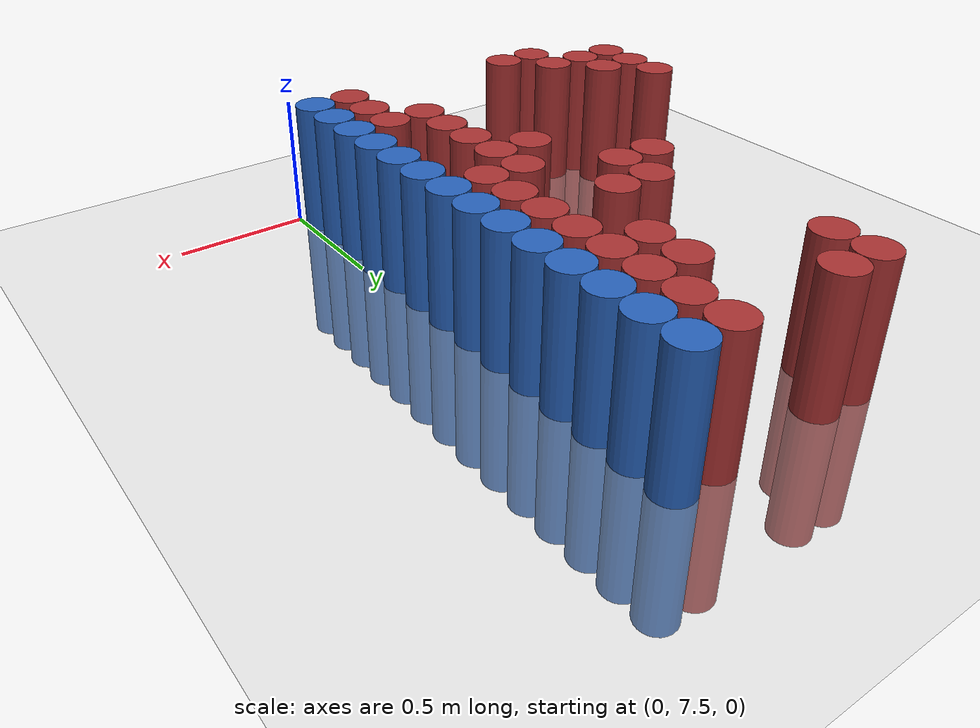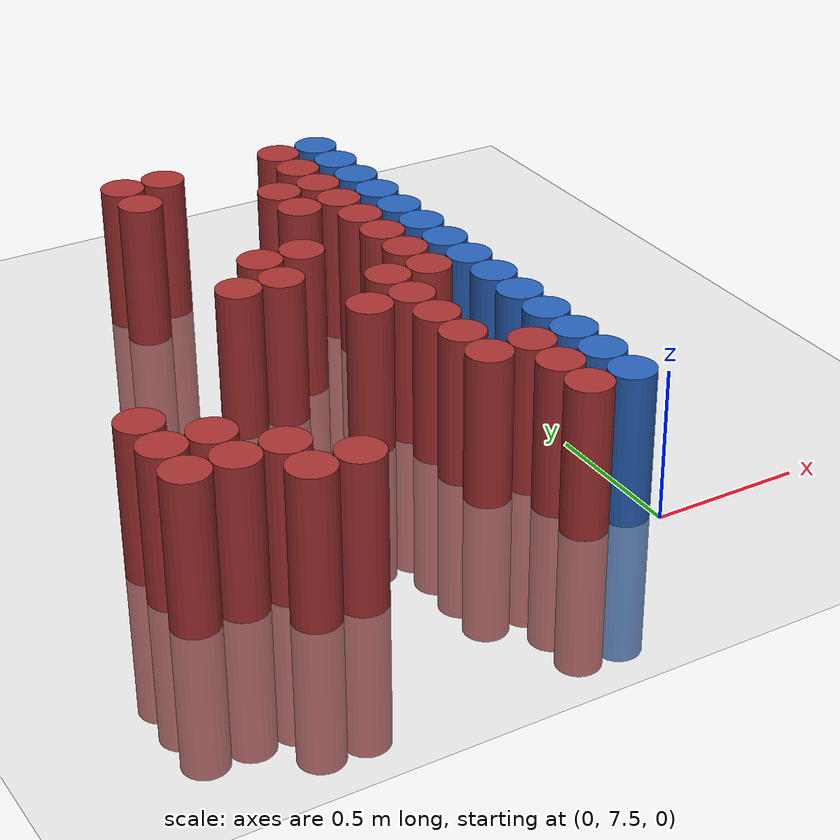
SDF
<sdf version="1.6">
 <world name="default">
  <model name="ground_plane">
   <static>1</static>
   <link name="link">
    <collision name="collision">
     <geometry><plane><normal>0 0 1</normal><size>100 100</size></plane></geometry>
     <surface><friction><ode><mu>100</mu><mu2>50</mu2></ode></friction></surface>
    </collision>
    <visual name="visual">
     <cast_shadows>0</cast_shadows>
     <geometry><plane><normal>0 0 1</normal><size>100 100</size></plane></geometry>
     <material>
      <script><uri>file://media/materials/scripts/gazebo.material</uri><name>Gazebo/Grey</name></script>
     </material>
    </visual>
   </link>
  </model>
  <model name="unit_cylinder_231">
   <static>1</static>
   <pose>-1.425000 7.725000 0.000000 0.000000 0.000000 0.000000</pose>
   <link name="link">
    <inertial>
     <mass>1</mass>
     <inertia><ixx>0.145833</ixx><ixy>0</ixy><ixz>0</ixz><iyy>0.145833</iyy><iyz>0</iyz><izz>0.125</izz></inertia>
    </inertial>
    <collision name="collision">
     <geometry><cylinder><radius>0.075000</radius><length>1</length></cylinder></geometry>
    </collision>
    <visual name="visual">
     <geometry><cylinder><radius>0.075000</radius><length>1</length></cylinder></geometry>
     <material>
      <ambient>0.648000 0.192000 0.192000 1</ambient>
      <diffuse>0.648000 0.192000 0.192000 1</diffuse>
     </material>
     <material>
      <script><name>Gazebo/Grey</name><uri>file://media/materials/scripts/gazebo.material</uri></script>
     </material>
    </visual>
   </link>
  </model>
  <model name="unit_cylinder_232">
   <static>1</static>
   <pose>-1.425000 7.875000 0.000000 0.000000 0.000000 0.000000</pose>
   <link name="link">
    <inertial>
     <mass>1</mass>
     <inertia><ixx>0.145833</ixx><ixy>0</ixy><ixz>0</ixz><iyy>0.145833</iyy><iyz>0</iyz><izz>0.125</izz></inertia>
    </inertial>
    <collision name="collision">
     <geometry><cylinder><radius>0.075000</radius><length>1</length></cylinder></geometry>
    </collision>
    <visual name="visual">
     <geometry><cylinder><radius>0.075000</radius><length>1</length></cylinder></geometry>
     <material>
      <ambient>0.648000 0.192000 0.192000 1</ambient>
      <diffuse>0.648000 0.192000 0.192000 1</diffuse>
     </material>
     <material>
      <script><name>Gazebo/Grey</name><uri>file://media/materials/scripts/gazebo.material</uri></script>
     </material>
    </visual>
   </link>
  </model>
  <model name="unit_cylinder_233">
   <static>1</static>
   <pose>-1.425000 8.025000 0.000000 0.000000 0.000000 0.000000</pose>
   <link name="link">
    <inertial>
     <mass>1</mass>
     <inertia><ixx>0.145833</ixx><ixy>0</ixy><ixz>0</ixz><iyy>0.145833</iyy><iyz>0</iyz><izz>0.125</izz></inertia>
    </inertial>
    <collision name="collision">
     <geometry><cylinder><radius>0.075000</radius><length>1</length></cylinder></geometry>
    </collision>
    <visual name="visual">
     <geometry><cylinder><radius>0.075000</radius><length>1</length></cylinder></geometry>
     <material>
      <ambient>0.648000 0.192000 0.192000 1</ambient>
      <diffuse>0.648000 0.192000 0.192000 1</diffuse>
     </material>
     <material>
      <script><name>Gazebo/Grey</name><uri>file://media/materials/scripts/gazebo.material</uri></script>
     </material>
    </visual>
   </link>
  </model>
  <model name="unit_cylinder_240">
   <static>1</static>
   <pose>-1.275000 7.725000 0.000000 0.000000 0.000000 0.000000</pose>
   <link name="link">
    <inertial>
     <mass>1</mass>
     <inertia><ixx>0.145833</ixx><ixy>0</ixy><ixz>0</ixz><iyy>0.145833</iyy><iyz>0</iyz><izz>0.125</izz></inertia>
    </inertial>
    <collision name="collision">
     <geometry><cylinder><radius>0.075000</radius><length>1</length></cylinder></geometry>
    </collision>
    <visual name="visual">
     <geometry><cylinder><radius>0.075000</radius><length>1</length></cylinder></geometry>
     <material>
      <ambient>0.648000 0.192000 0.192000 1</ambient>
      <diffuse>0.648000 0.192000 0.192000 1</diffuse>
     </material>
     <material>
      <script><name>Gazebo/Grey</name><uri>file://media/materials/scripts/gazebo.material</uri></script>
     </material>
    </visual>
   </link>
  </model>
  <model name="unit_cylinder_241">
   <static>1</static>
   <pose>-1.275000 7.875000 0.000000 0.000000 0.000000 0.000000</pose>
   <link name="link">
    <inertial>
     <mass>1</mass>
     <inertia><ixx>0.145833</ixx><ixy>0</ixy><ixz>0</ixz><iyy>0.145833</iyy><iyz>0</iyz><izz>0.125</izz></inertia>
    </inertial>
    <collision name="collision">
     <geometry><cylinder><radius>0.075000</radius><length>1</length></cylinder></geometry>
    </collision>
    <visual name="visual">
     <geometry><cylinder><radius>0.075000</radius><length>1</length></cylinder></geometry>
     <material>
      <ambient>0.648000 0.192000 0.192000 1</ambient>
      <diffuse>0.648000 0.192000 0.192000 1</diffuse>
     </material>
     <material>
      <script><name>Gazebo/Grey</name><uri>file://media/materials/scripts/gazebo.material</uri></script>
     </material>
    </visual>
   </link>
  </model>
  <model name="unit_cylinder_248">
   <static>1</static>
   <pose>-1.125000 7.575000 0.000000 0.000000 0.000000 0.000000</pose>
   <link name="link">
    <inertial>
     <mass>1</mass>
     <inertia><ixx>0.145833</ixx><ixy>0</ixy><ixz>0</ixz><iyy>0.145833</iyy><iyz>0</iyz><izz>0.125</izz></inertia>
    </inertial>
    <collision name="collision">
     <geometry><cylinder><radius>0.075000</radius><length>1</length></cylinder></geometry>
    </collision>
    <visual name="visual">
     <geometry><cylinder><radius>0.075000</radius><length>1</length></cylinder></geometry>
     <material>
      <ambient>0.648000 0.192000 0.192000 1</ambient>
      <diffuse>0.648000 0.192000 0.192000 1</diffuse>
     </material>
     <material>
      <script><name>Gazebo/Grey</name><uri>file://media/materials/scripts/gazebo.material</uri></script>
     </material>
    </visual>
   </link>
  </model>
  <model name="unit_cylinder_249">
   <static>1</static>
   <pose>-1.125000 7.725000 0.000000 0.000000 0.000000 0.000000</pose>
   <link name="link">
    <inertial>
     <mass>1</mass>
     <inertia><ixx>0.145833</ixx><ixy>0</ixy><ixz>0</ixz><iyy>0.145833</iyy><iyz>0</iyz><izz>0.125</izz></inertia>
    </inertial>
    <collision name="collision">
     <geometry><cylinder><radius>0.075000</radius><length>1</length></cylinder></geometry>
    </collision>
    <visual name="visual">
     <geometry><cylinder><radius>0.075000</radius><length>1</length></cylinder></geometry>
     <material>
      <ambient>0.648000 0.192000 0.192000 1</ambient>
      <diffuse>0.648000 0.192000 0.192000 1</diffuse>
     </material>
     <material>
      <script><name>Gazebo/Grey</name><uri>file://media/materials/scripts/gazebo.material</uri></script>
     </material>
    </visual>
   </link>
  </model>
  <model name="unit_cylinder_254">
   <static>1</static>
   <pose>-0.975000 7.575000 0.000000 0.000000 0.000000 0.000000</pose>
   <link name="link">
    <inertial>
     <mass>1</mass>
     <inertia><ixx>0.145833</ixx><ixy>0</ixy><ixz>0</ixz><iyy>0.145833</iyy><iyz>0</iyz><izz>0.125</izz></inertia>
    </inertial>
    <collision name="collision">
     <geometry><cylinder><radius>0.075000</radius><length>1</length></cylinder></geometry>
    </collision>
    <visual name="visual">
     <geometry><cylinder><radius>0.075000</radius><length>1</length></cylinder></geometry>
     <material>
      <ambient>0.648000 0.192000 0.192000 1</ambient>
      <diffuse>0.648000 0.192000 0.192000 1</diffuse>
     </material>
     <material>
      <script><name>Gazebo/Grey</name><uri>file://media/materials/scripts/gazebo.material</uri></script>
     </material>
    </visual>
   </link>
  </model>
  <model name="unit_cylinder_257">
   <static>1</static>
   <pose>-0.825000 8.625000 0.000000 0.000000 0.000000 0.000000</pose>
   <link name="link">
    <inertial>
     <mass>1</mass>
     <inertia><ixx>0.145833</ixx><ixy>0</ixy><ixz>0</ixz><iyy>0.145833</iyy><iyz>0</iyz><izz>0.125</izz></inertia>
    </inertial>
    <collision name="collision">
     <geometry><cylinder><radius>0.075000</radius><length>1</length></cylinder></geometry>
    </collision>
    <visual name="visual">
     <geometry><cylinder><radius>0.075000</radius><length>1</length></cylinder></geometry>
     <material>
      <ambient>0.648000 0.192000 0.192000 1</ambient>
      <diffuse>0.648000 0.192000 0.192000 1</diffuse>
     </material>
     <material>
      <script><name>Gazebo/Grey</name><uri>file://media/materials/scripts/gazebo.material</uri></script>
     </material>
    </visual>
   </link>
  </model>
  <model name="unit_cylinder_258">
   <static>1</static>
   <pose>-0.825000 9.375000 0.000000 0.000000 0.000000 0.000000</pose>
   <link name="link">
    <inertial>
     <mass>1</mass>
     <inertia><ixx>0.145833</ixx><ixy>0</ixy><ixz>0</ixz><iyy>0.145833</iyy><iyz>0</iyz><izz>0.125</izz></inertia>
    </inertial>
    <collision name="collision">
     <geometry><cylinder><radius>0.075000</radius><length>1</length></cylinder></geometry>
    </collision>
    <visual name="visual">
     <geometry><cylinder><radius>0.075000</radius><length>1</length></cylinder></geometry>
     <material>
      <ambient>0.648000 0.192000 0.192000 1</ambient>
      <diffuse>0.648000 0.192000 0.192000 1</diffuse>
     </material>
     <material>
      <script><name>Gazebo/Grey</name><uri>file://media/materials/scripts/gazebo.material</uri></script>
     </material>
    </visual>
   </link>
  </model>
  <model name="unit_cylinder_259">
   <static>1</static>
   <pose>-0.825000 9.525000 0.000000 0.000000 0.000000 0.000000</pose>
   <link name="link">
    <inertial>
     <mass>1</mass>
     <inertia><ixx>0.145833</ixx><ixy>0</ixy><ixz>0</ixz><iyy>0.145833</iyy><iyz>0</iyz><izz>0.125</izz></inertia>
    </inertial>
    <collision name="collision">
     <geometry><cylinder><radius>0.075000</radius><length>1</length></cylinder></geometry>
    </collision>
    <visual name="visual">
     <geometry><cylinder><radius>0.075000</radius><length>1</length></cylinder></geometry>
     <material>
      <ambient>0.648000 0.192000 0.192000 1</ambient>
      <diffuse>0.648000 0.192000 0.192000 1</diffuse>
     </material>
     <material>
      <script><name>Gazebo/Grey</name><uri>file://media/materials/scripts/gazebo.material</uri></script>
     </material>
    </visual>
   </link>
  </model>
  <model name="unit_cylinder_264">
   <static>1</static>
   <pose>-0.675000 8.625000 0.000000 0.000000 0.000000 0.000000</pose>
   <link name="link">
    <inertial>
     <mass>1</mass>
     <inertia><ixx>0.145833</ixx><ixy>0</ixy><ixz>0</ixz><iyy>0.145833</iyy><iyz>0</iyz><izz>0.125</izz></inertia>
    </inertial>
    <collision name="collision">
     <geometry><cylinder><radius>0.075000</radius><length>1</length></cylinder></geometry>
    </collision>
    <visual name="visual">
     <geometry><cylinder><radius>0.075000</radius><length>1</length></cylinder></geometry>
     <material>
      <ambient>0.648000 0.192000 0.192000 1</ambient>
      <diffuse>0.648000 0.192000 0.192000 1</diffuse>
     </material>
     <material>
      <script><name>Gazebo/Grey</name><uri>file://media/materials/scripts/gazebo.material</uri></script>
     </material>
    </visual>
   </link>
  </model>
  <model name="unit_cylinder_265">
   <static>1</static>
   <pose>-0.675000 8.775000 0.000000 0.000000 0.000000 0.000000</pose>
   <link name="link">
    <inertial>
     <mass>1</mass>
     <inertia><ixx>0.145833</ixx><ixy>0</ixy><ixz>0</ixz><iyy>0.145833</iyy><iyz>0</iyz><izz>0.125</izz></inertia>
    </inertial>
    <collision name="collision">
     <geometry><cylinder><radius>0.075000</radius><length>1</length></cylinder></geometry>
    </collision>
    <visual name="visual">
     <geometry><cylinder><radius>0.075000</radius><length>1</length></cylinder></geometry>
     <material>
      <ambient>0.648000 0.192000 0.192000 1</ambient>
      <diffuse>0.648000 0.192000 0.192000 1</diffuse>
     </material>
     <material>
      <script><name>Gazebo/Grey</name><uri>file://media/materials/scripts/gazebo.material</uri></script>
     </material>
    </visual>
   </link>
  </model>
  <model name="unit_cylinder_266">
   <static>1</static>
   <pose>-0.675000 9.525000 0.000000 0.000000 0.000000 0.000000</pose>
   <link name="link">
    <inertial>
     <mass>1</mass>
     <inertia><ixx>0.145833</ixx><ixy>0</ixy><ixz>0</ixz><iyy>0.145833</iyy><iyz>0</iyz><izz>0.125</izz></inertia>
    </inertial>
    <collision name="collision">
     <geometry><cylinder><radius>0.075000</radius><length>1</length></cylinder></geometry>
    </collision>
    <visual name="visual">
     <geometry><cylinder><radius>0.075000</radius><length>1</length></cylinder></geometry>
     <material>
      <ambient>0.648000 0.192000 0.192000 1</ambient>
      <diffuse>0.648000 0.192000 0.192000 1</diffuse>
     </material>
     <material>
      <script><name>Gazebo/Grey</name><uri>file://media/materials/scripts/gazebo.material</uri></script>
     </material>
    </visual>
   </link>
  </model>
  <model name="unit_cylinder_276">
   <static>1</static>
   <pose>-0.525000 8.325000 0.000000 0.000000 0.000000 0.000000</pose>
   <link name="link">
    <inertial>
     <mass>1</mass>
     <inertia><ixx>0.145833</ixx><ixy>0</ixy><ixz>0</ixz><iyy>0.145833</iyy><iyz>0</iyz><izz>0.125</izz></inertia>
    </inertial>
    <collision name="collision">
     <geometry><cylinder><radius>0.075000</radius><length>1</length></cylinder></geometry>
    </collision>
    <visual name="visual">
     <geometry><cylinder><radius>0.075000</radius><length>1</length></cylinder></geometry>
     <material>
      <ambient>0.648000 0.192000 0.192000 1</ambient>
      <diffuse>0.648000 0.192000 0.192000 1</diffuse>
     </material>
     <material>
      <script><name>Gazebo/Grey</name><uri>file://media/materials/scripts/gazebo.material</uri></script>
     </material>
    </visual>
   </link>
  </model>
  <model name="unit_cylinder_277">
   <static>1</static>
   <pose>-0.525000 8.775000 0.000000 0.000000 0.000000 0.000000</pose>
   <link name="link">
    <inertial>
     <mass>1</mass>
     <inertia><ixx>0.145833</ixx><ixy>0</ixy><ixz>0</ixz><iyy>0.145833</iyy><iyz>0</iyz><izz>0.125</izz></inertia>
    </inertial>
    <collision name="collision">
     <geometry><cylinder><radius>0.075000</radius><length>1</length></cylinder></geometry>
    </collision>
    <visual name="visual">
     <geometry><cylinder><radius>0.075000</radius><length>1</length></cylinder></geometry>
     <material>
      <ambient>0.648000 0.192000 0.192000 1</ambient>
      <diffuse>0.648000 0.192000 0.192000 1</diffuse>
     </material>
     <material>
      <script><name>Gazebo/Grey</name><uri>file://media/materials/scripts/gazebo.material</uri></script>
     </material>
    </visual>
   </link>
  </model>
  <model name="unit_cylinder_284">
   <static>1</static>
   <pose>-0.375000 7.875000 0.000000 0.000000 0.000000 0.000000</pose>
   <link name="link">
    <inertial>
     <mass>1</mass>
     <inertia><ixx>0.145833</ixx><ixy>0</ixy><ixz>0</ixz><iyy>0.145833</iyy><iyz>0</iyz><izz>0.125</izz></inertia>
    </inertial>
    <collision name="collision">
     <geometry><cylinder><radius>0.075000</radius><length>1</length></cylinder></geometry>
    </collision>
    <visual name="visual">
     <geometry><cylinder><radius>0.075000</radius><length>1</length></cylinder></geometry>
     <material>
      <ambient>0.648000 0.192000 0.192000 1</ambient>
      <diffuse>0.648000 0.192000 0.192000 1</diffuse>
     </material>
     <material>
      <script><name>Gazebo/Grey</name><uri>file://media/materials/scripts/gazebo.material</uri></script>
     </material>
    </visual>
   </link>
  </model>
  <model name="unit_cylinder_285">
   <static>1</static>
   <pose>-0.375000 8.025000 0.000000 0.000000 0.000000 0.000000</pose>
   <link name="link">
    <inertial>
     <mass>1</mass>
     <inertia><ixx>0.145833</ixx><ixy>0</ixy><ixz>0</ixz><iyy>0.145833</iyy><iyz>0</iyz><izz>0.125</izz></inertia>
    </inertial>
    <collision name="collision">
     <geometry><cylinder><radius>0.075000</radius><length>1</length></cylinder></geometry>
    </collision>
    <visual name="visual">
     <geometry><cylinder><radius>0.075000</radius><length>1</length></cylinder></geometry>
     <material>
      <ambient>0.648000 0.192000 0.192000 1</ambient>
      <diffuse>0.648000 0.192000 0.192000 1</diffuse>
     </material>
     <material>
      <script><name>Gazebo/Grey</name><uri>file://media/materials/scripts/gazebo.material</uri></script>
     </material>
    </visual>
   </link>
  </model>
  <model name="unit_cylinder_286">
   <static>1</static>
   <pose>-0.375000 8.175000 0.000000 0.000000 0.000000 0.000000</pose>
   <link name="link">
    <inertial>
     <mass>1</mass>
     <inertia><ixx>0.145833</ixx><ixy>0</ixy><ixz>0</ixz><iyy>0.145833</iyy><iyz>0</iyz><izz>0.125</izz></inertia>
    </inertial>
    <collision name="collision">
     <geometry><cylinder><radius>0.075000</radius><length>1</length></cylinder></geometry>
    </collision>
    <visual name="visual">
     <geometry><cylinder><radius>0.075000</radius><length>1</length></cylinder></geometry>
     <material>
      <ambient>0.648000 0.192000 0.192000 1</ambient>
      <diffuse>0.648000 0.192000 0.192000 1</diffuse>
     </material>
     <material>
      <script><name>Gazebo/Grey</name><uri>file://media/materials/scripts/gazebo.material</uri></script>
     </material>
    </visual>
   </link>
  </model>
  <model name="unit_cylinder_287">
   <static>1</static>
   <pose>-0.375000 8.325000 0.000000 0.000000 0.000000 0.000000</pose>
   <link name="link">
    <inertial>
     <mass>1</mass>
     <inertia><ixx>0.145833</ixx><ixy>0</ixy><ixz>0</ixz><iyy>0.145833</iyy><iyz>0</iyz><izz>0.125</izz></inertia>
    </inertial>
    <collision name="collision">
     <geometry><cylinder><radius>0.075000</radius><length>1</length></cylinder></geometry>
    </collision>
    <visual name="visual">
     <geometry><cylinder><radius>0.075000</radius><length>1</length></cylinder></geometry>
     <material>
      <ambient>0.648000 0.192000 0.192000 1</ambient>
      <diffuse>0.648000 0.192000 0.192000 1</diffuse>
     </material>
     <material>
      <script><name>Gazebo/Grey</name><uri>file://media/materials/scripts/gazebo.material</uri></script>
     </material>
    </visual>
   </link>
  </model>
  <model name="unit_cylinder_288">
   <static>1</static>
   <pose>-0.375000 8.475000 0.000000 0.000000 0.000000 0.000000</pose>
   <link name="link">
    <inertial>
     <mass>1</mass>
     <inertia><ixx>0.145833</ixx><ixy>0</ixy><ixz>0</ixz><iyy>0.145833</iyy><iyz>0</iyz><izz>0.125</izz></inertia>
    </inertial>
    <collision name="collision">
     <geometry><cylinder><radius>0.075000</radius><length>1</length></cylinder></geometry>
    </collision>
    <visual name="visual">
     <geometry><cylinder><radius>0.075000</radius><length>1</length></cylinder></geometry>
     <material>
      <ambient>0.648000 0.192000 0.192000 1</ambient>
      <diffuse>0.648000 0.192000 0.192000 1</diffuse>
     </material>
     <material>
      <script><name>Gazebo/Grey</name><uri>file://media/materials/scripts/gazebo.material</uri></script>
     </material>
    </visual>
   </link>
  </model>
  <model name="unit_cylinder_289">
   <static>1</static>
   <pose>-0.375000 9.075000 0.000000 0.000000 0.000000 0.000000</pose>
   <link name="link">
    <inertial>
     <mass>1</mass>
     <inertia><ixx>0.145833</ixx><ixy>0</ixy><ixz>0</ixz><iyy>0.145833</iyy><iyz>0</iyz><izz>0.125</izz></inertia>
    </inertial>
    <collision name="collision">
     <geometry><cylinder><radius>0.075000</radius><length>1</length></cylinder></geometry>
    </collision>
    <visual name="visual">
     <geometry><cylinder><radius>0.075000</radius><length>1</length></cylinder></geometry>
     <material>
      <ambient>0.648000 0.192000 0.192000 1</ambient>
      <diffuse>0.648000 0.192000 0.192000 1</diffuse>
     </material>
     <material>
      <script><name>Gazebo/Grey</name><uri>file://media/materials/scripts/gazebo.material</uri></script>
     </material>
    </visual>
   </link>
  </model>
  <model name="unit_cylinder_290">
   <static>1</static>
   <pose>-0.375000 9.225000 0.000000 0.000000 0.000000 0.000000</pose>
   <link name="link">
    <inertial>
     <mass>1</mass>
     <inertia><ixx>0.145833</ixx><ixy>0</ixy><ixz>0</ixz><iyy>0.145833</iyy><iyz>0</iyz><izz>0.125</izz></inertia>
    </inertial>
    <collision name="collision">
     <geometry><cylinder><radius>0.075000</radius><length>1</length></cylinder></geometry>
    </collision>
    <visual name="visual">
     <geometry><cylinder><radius>0.075000</radius><length>1</length></cylinder></geometry>
     <material>
      <ambient>0.648000 0.192000 0.192000 1</ambient>
      <diffuse>0.648000 0.192000 0.192000 1</diffuse>
     </material>
     <material>
      <script><name>Gazebo/Grey</name><uri>file://media/materials/scripts/gazebo.material</uri></script>
     </material>
    </visual>
   </link>
  </model>
  <model name="unit_cylinder_296">
   <static>1</static>
   <pose>-0.225000 7.575000 0.000000 0.000000 0.000000 0.000000</pose>
   <link name="link">
    <inertial>
     <mass>1</mass>
     <inertia><ixx>0.145833</ixx><ixy>0</ixy><ixz>0</ixz><iyy>0.145833</iyy><iyz>0</iyz><izz>0.125</izz></inertia>
    </inertial>
    <collision name="collision">
     <geometry><cylinder><radius>0.075000</radius><length>1</length></cylinder></geometry>
    </collision>
    <visual name="visual">
     <geometry><cylinder><radius>0.075000</radius><length>1</length></cylinder></geometry>
     <material>
      <ambient>0.648000 0.192000 0.192000 1</ambient>
      <diffuse>0.648000 0.192000 0.192000 1</diffuse>
     </material>
     <material>
      <script><name>Gazebo/Grey</name><uri>file://media/materials/scripts/gazebo.material</uri></script>
     </material>
    </visual>
   </link>
  </model>
  <model name="unit_cylinder_297">
   <static>1</static>
   <pose>-0.225000 7.725000 0.000000 0.000000 0.000000 0.000000</pose>
   <link name="link">
    <inertial>
     <mass>1</mass>
     <inertia><ixx>0.145833</ixx><ixy>0</ixy><ixz>0</ixz><iyy>0.145833</iyy><iyz>0</iyz><izz>0.125</izz></inertia>
    </inertial>
    <collision name="collision">
     <geometry><cylinder><radius>0.075000</radius><length>1</length></cylinder></geometry>
    </collision>
    <visual name="visual">
     <geometry><cylinder><radius>0.075000</radius><length>1</length></cylinder></geometry>
     <material>
      <ambient>0.648000 0.192000 0.192000 1</ambient>
      <diffuse>0.648000 0.192000 0.192000 1</diffuse>
     </material>
     <material>
      <script><name>Gazebo/Grey</name><uri>file://media/materials/scripts/gazebo.material</uri></script>
     </material>
    </visual>
   </link>
  </model>
  <model name="unit_cylinder_298">
   <static>1</static>
   <pose>-0.225000 7.875000 0.000000 0.000000 0.000000 0.000000</pose>
   <link name="link">
    <inertial>
     <mass>1</mass>
     <inertia><ixx>0.145833</ixx><ixy>0</ixy><ixz>0</ixz><iyy>0.145833</iyy><iyz>0</iyz><izz>0.125</izz></inertia>
    </inertial>
    <collision name="collision">
     <geometry><cylinder><radius>0.075000</radius><length>1</length></cylinder></geometry>
    </collision>
    <visual name="visual">
     <geometry><cylinder><radius>0.075000</radius><length>1</length></cylinder></geometry>
     <material>
      <ambient>0.648000 0.192000 0.192000 1</ambient>
      <diffuse>0.648000 0.192000 0.192000 1</diffuse>
     </material>
     <material>
      <script><name>Gazebo/Grey</name><uri>file://media/materials/scripts/gazebo.material</uri></script>
     </material>
    </visual>
   </link>
  </model>
  <model name="unit_cylinder_299">
   <static>1</static>
   <pose>-0.225000 8.475000 0.000000 0.000000 0.000000 0.000000</pose>
   <link name="link">
    <inertial>
     <mass>1</mass>
     <inertia><ixx>0.145833</ixx><ixy>0</ixy><ixz>0</ixz><iyy>0.145833</iyy><iyz>0</iyz><izz>0.125</izz></inertia>
    </inertial>
    <collision name="collision">
     <geometry><cylinder><radius>0.075000</radius><length>1</length></cylinder></geometry>
    </collision>
    <visual name="visual">
     <geometry><cylinder><radius>0.075000</radius><length>1</length></cylinder></geometry>
     <material>
      <ambient>0.648000 0.192000 0.192000 1</ambient>
      <diffuse>0.648000 0.192000 0.192000 1</diffuse>
     </material>
     <material>
      <script><name>Gazebo/Grey</name><uri>file://media/materials/scripts/gazebo.material</uri></script>
     </material>
    </visual>
   </link>
  </model>
  <model name="unit_cylinder_300">
   <static>1</static>
   <pose>-0.225000 8.625000 0.000000 0.000000 0.000000 0.000000</pose>
   <link name="link">
    <inertial>
     <mass>1</mass>
     <inertia><ixx>0.145833</ixx><ixy>0</ixy><ixz>0</ixz><iyy>0.145833</iyy><iyz>0</iyz><izz>0.125</izz></inertia>
    </inertial>
    <collision name="collision">
     <geometry><cylinder><radius>0.075000</radius><length>1</length></cylinder></geometry>
    </collision>
    <visual name="visual">
     <geometry><cylinder><radius>0.075000</radius><length>1</length></cylinder></geometry>
     <material>
      <ambient>0.648000 0.192000 0.192000 1</ambient>
      <diffuse>0.648000 0.192000 0.192000 1</diffuse>
     </material>
     <material>
      <script><name>Gazebo/Grey</name><uri>file://media/materials/scripts/gazebo.material</uri></script>
     </material>
    </visual>
   </link>
  </model>
  <model name="unit_cylinder_301">
   <static>1</static>
   <pose>-0.225000 8.775000 0.000000 0.000000 0.000000 0.000000</pose>
   <link name="link">
    <inertial>
     <mass>1</mass>
     <inertia><ixx>0.145833</ixx><ixy>0</ixy><ixz>0</ixz><iyy>0.145833</iyy><iyz>0</iyz><izz>0.125</izz></inertia>
    </inertial>
    <collision name="collision">
     <geometry><cylinder><radius>0.075000</radius><length>1</length></cylinder></geometry>
    </collision>
    <visual name="visual">
     <geometry><cylinder><radius>0.075000</radius><length>1</length></cylinder></geometry>
     <material>
      <ambient>0.648000 0.192000 0.192000 1</ambient>
      <diffuse>0.648000 0.192000 0.192000 1</diffuse>
     </material>
     <material>
      <script><name>Gazebo/Grey</name><uri>file://media/materials/scripts/gazebo.material</uri></script>
     </material>
    </visual>
   </link>
  </model>
  <model name="unit_cylinder_302">
   <static>1</static>
   <pose>-0.225000 8.925000 0.000000 0.000000 0.000000 0.000000</pose>
   <link name="link">
    <inertial>
     <mass>1</mass>
     <inertia><ixx>0.145833</ixx><ixy>0</ixy><ixz>0</ixz><iyy>0.145833</iyy><iyz>0</iyz><izz>0.125</izz></inertia>
    </inertial>
    <collision name="collision">
     <geometry><cylinder><radius>0.075000</radius><length>1</length></cylinder></geometry>
    </collision>
    <visual name="visual">
     <geometry><cylinder><radius>0.075000</radius><length>1</length></cylinder></geometry>
     <material>
      <ambient>0.648000 0.192000 0.192000 1</ambient>
      <diffuse>0.648000 0.192000 0.192000 1</diffuse>
     </material>
     <material>
      <script><name>Gazebo/Grey</name><uri>file://media/materials/scripts/gazebo.material</uri></script>
     </material>
    </visual>
   </link>
  </model>
  <model name="unit_cylinder_303">
   <static>1</static>
   <pose>-0.225000 9.075000 0.000000 0.000000 0.000000 0.000000</pose>
   <link name="link">
    <inertial>
     <mass>1</mass>
     <inertia><ixx>0.145833</ixx><ixy>0</ixy><ixz>0</ixz><iyy>0.145833</iyy><iyz>0</iyz><izz>0.125</izz></inertia>
    </inertial>
    <collision name="collision">
     <geometry><cylinder><radius>0.075000</radius><length>1</length></cylinder></geometry>
    </collision>
    <visual name="visual">
     <geometry><cylinder><radius>0.075000</radius><length>1</length></cylinder></geometry>
     <material>
      <ambient>0.648000 0.192000 0.192000 1</ambient>
      <diffuse>0.648000 0.192000 0.192000 1</diffuse>
     </material>
     <material>
      <script><name>Gazebo/Grey</name><uri>file://media/materials/scripts/gazebo.material</uri></script>
     </material>
    </visual>
   </link>
  </model>
  <model name="unit_cylinder_304">
   <static>1</static>
   <pose>-0.225000 9.225000 0.000000 0.000000 0.000000 0.000000</pose>
   <link name="link">
    <inertial>
     <mass>1</mass>
     <inertia><ixx>0.145833</ixx><ixy>0</ixy><ixz>0</ixz><iyy>0.145833</iyy><iyz>0</iyz><izz>0.125</izz></inertia>
    </inertial>
    <collision name="collision">
     <geometry><cylinder><radius>0.075000</radius><length>1</length></cylinder></geometry>
    </collision>
    <visual name="visual">
     <geometry><cylinder><radius>0.075000</radius><length>1</length></cylinder></geometry>
     <material>
      <ambient>0.648000 0.192000 0.192000 1</ambient>
      <diffuse>0.648000 0.192000 0.192000 1</diffuse>
     </material>
     <material>
      <script><name>Gazebo/Grey</name><uri>file://media/materials/scripts/gazebo.material</uri></script>
     </material>
    </visual>
   </link>
  </model>
  <model name="unit_cylinder_305">
   <static>1</static>
   <pose>-0.225000 9.375000 0.000000 0.000000 0.000000 0.000000</pose>
   <link name="link">
    <inertial>
     <mass>1</mass>
     <inertia><ixx>0.145833</ixx><ixy>0</ixy><ixz>0</ixz><iyy>0.145833</iyy><iyz>0</iyz><izz>0.125</izz></inertia>
    </inertial>
    <collision name="collision">
     <geometry><cylinder><radius>0.075000</radius><length>1</length></cylinder></geometry>
    </collision>
    <visual name="visual">
     <geometry><cylinder><radius>0.075000</radius><length>1</length></cylinder></geometry>
     <material>
      <ambient>0.648000 0.192000 0.192000 1</ambient>
      <diffuse>0.648000 0.192000 0.192000 1</diffuse>
     </material>
     <material>
      <script><name>Gazebo/Grey</name><uri>file://media/materials/scripts/gazebo.material</uri></script>
     </material>
    </visual>
   </link>
  </model>
  <model name="unit_cylinder_306">
   <static>1</static>
   <pose>-0.225000 9.525000 0.000000 0.000000 0.000000 0.000000</pose>
   <link name="link">
    <inertial>
     <mass>1</mass>
     <inertia><ixx>0.145833</ixx><ixy>0</ixy><ixz>0</ixz><iyy>0.145833</iyy><iyz>0</iyz><izz>0.125</izz></inertia>
    </inertial>
    <collision name="collision">
     <geometry><cylinder><radius>0.075000</radius><length>1</length></cylinder></geometry>
    </collision>
    <visual name="visual">
     <geometry><cylinder><radius>0.075000</radius><length>1</length></cylinder></geometry>
     <material>
      <ambient>0.648000 0.192000 0.192000 1</ambient>
      <diffuse>0.648000 0.192000 0.192000 1</diffuse>
     </material>
     <material>
      <script><name>Gazebo/Grey</name><uri>file://media/materials/scripts/gazebo.material</uri></script>
     </material>
    </visual>
   </link>
  </model>
  <model name="unit_cylinder_323">
   <static>1</static>
   <pose>-0.075000 7.575000 0.000000 0.000000 0.000000 0.000000</pose>
   <link name="link">
    <inertial>
     <mass>1</mass>
     <inertia><ixx>0.145833</ixx><ixy>0</ixy><ixz>0</ixz><iyy>0.145833</iyy><iyz>0</iyz><izz>0.125</izz></inertia>
    </inertial>
    <collision name="collision">
     <geometry><cylinder><radius>0.075000</radius><length>1</length></cylinder></geometry>
    </collision>
    <visual name="visual">
     <geometry><cylinder><radius>0.075000</radius><length>1</length></cylinder></geometry>
     <material>
      <ambient>0.152000 0.379000 0.720000 1</ambient>
      <diffuse>0.152000 0.379000 0.720000 1</diffuse>
     </material>
     <material>
      <script><name>Gazebo/Grey</name><uri>file://media/materials/scripts/gazebo.material</uri></script>
     </material>
    </visual>
   </link>
  </model>
  <model name="unit_cylinder_324">
   <static>1</static>
   <pose>-0.075000 7.725000 0.000000 0.000000 0.000000 0.000000</pose>
   <link name="link">
    <inertial>
     <mass>1</mass>
     <inertia><ixx>0.145833</ixx><ixy>0</ixy><ixz>0</ixz><iyy>0.145833</iyy><iyz>0</iyz><izz>0.125</izz></inertia>
    </inertial>
    <collision name="collision">
     <geometry><cylinder><radius>0.075000</radius><length>1</length></cylinder></geometry>
    </collision>
    <visual name="visual">
     <geometry><cylinder><radius>0.075000</radius><length>1</length></cylinder></geometry>
     <material>
      <ambient>0.152000 0.379000 0.720000 1</ambient>
      <diffuse>0.152000 0.379000 0.720000 1</diffuse>
     </material>
     <material>
      <script><name>Gazebo/Grey</name><uri>file://media/materials/scripts/gazebo.material</uri></script>
     </material>
    </visual>
   </link>
  </model>
  <model name="unit_cylinder_325">
   <static>1</static>
   <pose>-0.075000 7.875000 0.000000 0.000000 0.000000 0.000000</pose>
   <link name="link">
    <inertial>
     <mass>1</mass>
     <inertia><ixx>0.145833</ixx><ixy>0</ixy><ixz>0</ixz><iyy>0.145833</iyy><iyz>0</iyz><izz>0.125</izz></inertia>
    </inertial>
    <collision name="collision">
     <geometry><cylinder><radius>0.075000</radius><length>1</length></cylinder></geometry>
    </collision>
    <visual name="visual">
     <geometry><cylinder><radius>0.075000</radius><length>1</length></cylinder></geometry>
     <material>
      <ambient>0.152000 0.379000 0.720000 1</ambient>
      <diffuse>0.152000 0.379000 0.720000 1</diffuse>
     </material>
     <material>
      <script><name>Gazebo/Grey</name><uri>file://media/materials/scripts/gazebo.material</uri></script>
     </material>
    </visual>
   </link>
  </model>
  <model name="unit_cylinder_326">
   <static>1</static>
   <pose>-0.075000 8.025000 0.000000 0.000000 0.000000 0.000000</pose>
   <link name="link">
    <inertial>
     <mass>1</mass>
     <inertia><ixx>0.145833</ixx><ixy>0</ixy><ixz>0</ixz><iyy>0.145833</iyy><iyz>0</iyz><izz>0.125</izz></inertia>
    </inertial>
    <collision name="collision">
     <geometry><cylinder><radius>0.075000</radius><length>1</length></cylinder></geometry>
    </collision>
    <visual name="visual">
     <geometry><cylinder><radius>0.075000</radius><length>1</length></cylinder></geometry>
     <material>
      <ambient>0.152000 0.379000 0.720000 1</ambient>
      <diffuse>0.152000 0.379000 0.720000 1</diffuse>
     </material>
     <material>
      <script><name>Gazebo/Grey</name><uri>file://media/materials/scripts/gazebo.material</uri></script>
     </material>
    </visual>
   </link>
  </model>
  <model name="unit_cylinder_327">
   <static>1</static>
   <pose>-0.075000 8.175000 0.000000 0.000000 0.000000 0.000000</pose>
   <link name="link">
    <inertial>
     <mass>1</mass>
     <inertia><ixx>0.145833</ixx><ixy>0</ixy><ixz>0</ixz><iyy>0.145833</iyy><iyz>0</iyz><izz>0.125</izz></inertia>
    </inertial>
    <collision name="collision">
     <geometry><cylinder><radius>0.075000</radius><length>1</length></cylinder></geometry>
    </collision>
    <visual name="visual">
     <geometry><cylinder><radius>0.075000</radius><length>1</length></cylinder></geometry>
     <material>
      <ambient>0.152000 0.379000 0.720000 1</ambient>
      <diffuse>0.152000 0.379000 0.720000 1</diffuse>
     </material>
     <material>
      <script><name>Gazebo/Grey</name><uri>file://media/materials/scripts/gazebo.material</uri></script>
     </material>
    </visual>
   </link>
  </model>
  <model name="unit_cylinder_328">
   <static>1</static>
   <pose>-0.075000 8.325000 0.000000 0.000000 0.000000 0.000000</pose>
   <link name="link">
    <inertial>
     <mass>1</mass>
     <inertia><ixx>0.145833</ixx><ixy>0</ixy><ixz>0</ixz><iyy>0.145833</iyy><iyz>0</iyz><izz>0.125</izz></inertia>
    </inertial>
    <collision name="collision">
     <geometry><cylinder><radius>0.075000</radius><length>1</length></cylinder></geometry>
    </collision>
    <visual name="visual">
     <geometry><cylinder><radius>0.075000</radius><length>1</length></cylinder></geometry>
     <material>
      <ambient>0.152000 0.379000 0.720000 1</ambient>
      <diffuse>0.152000 0.379000 0.720000 1</diffuse>
     </material>
     <material>
      <script><name>Gazebo/Grey</name><uri>file://media/materials/scripts/gazebo.material</uri></script>
     </material>
    </visual>
   </link>
  </model>
  <model name="unit_cylinder_329">
   <static>1</static>
   <pose>-0.075000 8.475000 0.000000 0.000000 0.000000 0.000000</pose>
   <link name="link">
    <inertial>
     <mass>1</mass>
     <inertia><ixx>0.145833</ixx><ixy>0</ixy><ixz>0</ixz><iyy>0.145833</iyy><iyz>0</iyz><izz>0.125</izz></inertia>
    </inertial>
    <collision name="collision">
     <geometry><cylinder><radius>0.075000</radius><length>1</length></cylinder></geometry>
    </collision>
    <visual name="visual">
     <geometry><cylinder><radius>0.075000</radius><length>1</length></cylinder></geometry>
     <material>
      <ambient>0.152000 0.379000 0.720000 1</ambient>
      <diffuse>0.152000 0.379000 0.720000 1</diffuse>
     </material>
     <material>
      <script><name>Gazebo/Grey</name><uri>file://media/materials/scripts/gazebo.material</uri></script>
     </material>
    </visual>
   </link>
  </model>
  <model name="unit_cylinder_330">
   <static>1</static>
   <pose>-0.075000 8.625000 0.000000 0.000000 0.000000 0.000000</pose>
   <link name="link">
    <inertial>
     <mass>1</mass>
     <inertia><ixx>0.145833</ixx><ixy>0</ixy><ixz>0</ixz><iyy>0.145833</iyy><iyz>0</iyz><izz>0.125</izz></inertia>
    </inertial>
    <collision name="collision">
     <geometry><cylinder><radius>0.075000</radius><length>1</length></cylinder></geometry>
    </collision>
    <visual name="visual">
     <geometry><cylinder><radius>0.075000</radius><length>1</length></cylinder></geometry>
     <material>
      <ambient>0.152000 0.379000 0.720000 1</ambient>
      <diffuse>0.152000 0.379000 0.720000 1</diffuse>
     </material>
     <material>
      <script><name>Gazebo/Grey</name><uri>file://media/materials/scripts/gazebo.material</uri></script>
     </material>
    </visual>
   </link>
  </model>
  <model name="unit_cylinder_331">
   <static>1</static>
   <pose>-0.075000 8.775000 0.000000 0.000000 0.000000 0.000000</pose>
   <link name="link">
    <inertial>
     <mass>1</mass>
     <inertia><ixx>0.145833</ixx><ixy>0</ixy><ixz>0</ixz><iyy>0.145833</iyy><iyz>0</iyz><izz>0.125</izz></inertia>
    </inertial>
    <collision name="collision">
     <geometry><cylinder><radius>0.075000</radius><length>1</length></cylinder></geometry>
    </collision>
    <visual name="visual">
     <geometry><cylinder><radius>0.075000</radius><length>1</length></cylinder></geometry>
     <material>
      <ambient>0.152000 0.379000 0.720000 1</ambient>
      <diffuse>0.152000 0.379000 0.720000 1</diffuse>
     </material>
     <material>
      <script><name>Gazebo/Grey</name><uri>file://media/materials/scripts/gazebo.material</uri></script>
     </material>
    </visual>
   </link>
  </model>
  <model name="unit_cylinder_332">
   <static>1</static>
   <pose>-0.075000 8.925000 0.000000 0.000000 0.000000 0.000000</pose>
   <link name="link">
    <inertial>
     <mass>1</mass>
     <inertia><ixx>0.145833</ixx><ixy>0</ixy><ixz>0</ixz><iyy>0.145833</iyy><iyz>0</iyz><izz>0.125</izz></inertia>
    </inertial>
    <collision name="collision">
     <geometry><cylinder><radius>0.075000</radius><length>1</length></cylinder></geometry>
    </collision>
    <visual name="visual">
     <geometry><cylinder><radius>0.075000</radius><length>1</length></cylinder></geometry>
     <material>
      <ambient>0.152000 0.379000 0.720000 1</ambient>
      <diffuse>0.152000 0.379000 0.720000 1</diffuse>
     </material>
     <material>
      <script><name>Gazebo/Grey</name><uri>file://media/materials/scripts/gazebo.material</uri></script>
     </material>
    </visual>
   </link>
  </model>
  <model name="unit_cylinder_333">
   <static>1</static>
   <pose>-0.075000 9.075000 0.000000 0.000000 0.000000 0.000000</pose>
   <link name="link">
    <inertial>
     <mass>1</mass>
     <inertia><ixx>0.145833</ixx><ixy>0</ixy><ixz>0</ixz><iyy>0.145833</iyy><iyz>0</iyz><izz>0.125</izz></inertia>
    </inertial>
    <collision name="collision">
     <geometry><cylinder><radius>0.075000</radius><length>1</length></cylinder></geometry>
    </collision>
    <visual name="visual">
     <geometry><cylinder><radius>0.075000</radius><length>1</length></cylinder></geometry>
     <material>
      <ambient>0.152000 0.379000 0.720000 1</ambient>
      <diffuse>0.152000 0.379000 0.720000 1</diffuse>
     </material>
     <material>
      <script><name>Gazebo/Grey</name><uri>file://media/materials/scripts/gazebo.material</uri></script>
     </material>
    </visual>
   </link>
  </model>
  <model name="unit_cylinder_334">
   <static>1</static>
   <pose>-0.075000 9.225000 0.000000 0.000000 0.000000 0.000000</pose>
   <link name="link">
    <inertial>
     <mass>1</mass>
     <inertia><ixx>0.145833</ixx><ixy>0</ixy><ixz>0</ixz><iyy>0.145833</iyy><iyz>0</iyz><izz>0.125</izz></inertia>
    </inertial>
    <collision name="collision">
     <geometry><cylinder><radius>0.075000</radius><length>1</length></cylinder></geometry>
    </collision>
    <visual name="visual">
     <geometry><cylinder><radius>0.075000</radius><length>1</length></cylinder></geometry>
     <material>
      <ambient>0.152000 0.379000 0.720000 1</ambient>
      <diffuse>0.152000 0.379000 0.720000 1</diffuse>
     </material>
     <material>
      <script><name>Gazebo/Grey</name><uri>file://media/materials/scripts/gazebo.material</uri></script>
     </material>
    </visual>
   </link>
  </model>
  <model name="unit_cylinder_335">
   <static>1</static>
   <pose>-0.075000 9.375000 0.000000 0.000000 0.000000 0.000000</pose>
   <link name="link">
    <inertial>
     <mass>1</mass>
     <inertia><ixx>0.145833</ixx><ixy>0</ixy><ixz>0</ixz><iyy>0.145833</iyy><iyz>0</iyz><izz>0.125</izz></inertia>
    </inertial>
    <collision name="collision">
     <geometry><cylinder><radius>0.075000</radius><length>1</length></cylinder></geometry>
    </collision>
    <visual name="visual">
     <geometry><cylinder><radius>0.075000</radius><length>1</length></cylinder></geometry>
     <material>
      <ambient>0.152000 0.379000 0.720000 1</ambient>
      <diffuse>0.152000 0.379000 0.720000 1</diffuse>
     </material>
     <material>
      <script><name>Gazebo/Grey</name><uri>file://media/materials/scripts/gazebo.material</uri></script>
     </material>
    </visual>
   </link>
  </model>
  <model name="unit_cylinder_336">
   <static>1</static>
   <pose>-0.075000 9.525000 0.000000 0.000000 0.000000 0.000000</pose>
   <link name="link">
    <inertial>
     <mass>1</mass>
     <inertia><ixx>0.145833</ixx><ixy>0</ixy><ixz>0</ixz><iyy>0.145833</iyy><iyz>0</iyz><izz>0.125</izz></inertia>
    </inertial>
    <collision name="collision">
     <geometry><cylinder><radius>0.075000</radius><length>1</length></cylinder></geometry>
    </collision>
    <visual name="visual">
     <geometry><cylinder><radius>0.075000</radius><length>1</length></cylinder></geometry>
     <material>
      <ambient>0.152000 0.379000 0.720000 1</ambient>
      <diffuse>0.152000 0.379000 0.720000 1</diffuse>
     </material>
     <material>
      <script><name>Gazebo/Grey</name><uri>file://media/materials/scripts/gazebo.material</uri></script>
     </material>
    </visual>
   </link>
  </model>
 </world>
</sdf>
